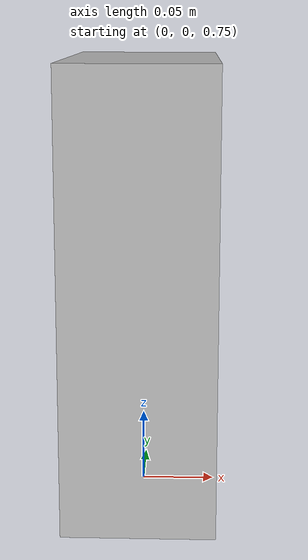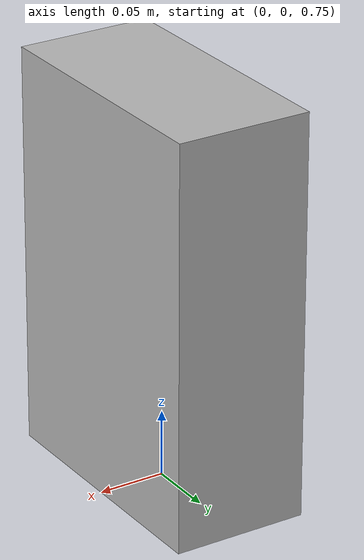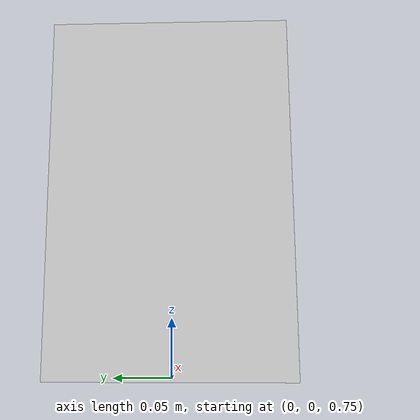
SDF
<?xml version='1.0'?>
<sdf version='1.6'>
		<model name="BodyRefBox">
			<self_collide>true</self_collide>
			<pose>0.0 0.0 0.0 0.0 0.0 0.0</pose>
			<!-- Start of parts of the pmodel BodyRefBox -->
			<!-- End of parts of the pmodel BodyRefBox -->

			<!-- Start of links of the pmodel BodyRefBox -->
			<!-- link full name is BodyRefBox::Tip -->
			<link name="1-Tip">
					<pose>0.0 0.0 0.0 0.0 0.0 0.0</pose>
					<inertial>
						<pose>0.0 0.0 0.0 0.0 0.0 0.0</pose>
						<inertia>
							<ixx>1.0</ixx>
							<ixy>0.0</ixy>
							<ixz>0.0</ixz>
							<iyy>1.0</iyy>
							<iyz>0.0</iyz>
							<izz>1.0</izz>
						</inertia>
						<mass>1.0</mass>
					</inertial>
					<!-- body full name is BodyRefBox::Tip::my_body_ref -->
					<collision name="1--my_body_ref">
						<laser_retro>0.0</laser_retro>
						<pose>0.0 0.0 0.8999999761581421 0.0 0.0 0.0</pose>
						<geometry>
							<box>
								<size>0.10000000149011612 0.20000000298023224 0.30000001192092896</size>
							</box>
						</geometry>
						<surface>
							<bounce>
								<restitution_coefficient>0.0</restitution_coefficient>
								<threshold>100000.0</threshold>
							</bounce>
							<friction>
								<ode>
									<mu>1.0</mu>
									<mu2>1.0</mu2>
									<fdir1>0.0 0.0 0.0</fdir1>
									<slip1>0.0</slip1>
									<slip2>0.0</slip2>
								</ode>
								<torsional>
									<coefficient>1.0</coefficient>
									<surface_radius>0.0</surface_radius>
								</torsional>
							</friction>
						</surface>
					</collision>
					<visual name="1--my_body_ref">
						<laser_retro>0.0</laser_retro>
						<pose>0.0 0.0 0.8999999761581421 0.0 0.0 0.0</pose>
						<geometry>
							<box>
								<size>0.10000000149011612 0.20000000298023224 0.30000001192092896</size>
							</box>
						</geometry>
						<surface>
							<bounce>
								<restitution_coefficient>0.0</restitution_coefficient>
								<threshold>100000.0</threshold>
							</bounce>
							<friction>
								<ode>
									<mu>1.0</mu>
									<mu2>1.0</mu2>
									<fdir1>0.0 0.0 0.0</fdir1>
									<slip1>0.0</slip1>
									<slip2>0.0</slip2>
								</ode>
								<torsional>
									<coefficient>1.0</coefficient>
									<surface_radius>0.0</surface_radius>
								</torsional>
							</friction>
						</surface>
					</visual>
			</link>
			<!-- End of links of the pmodel BodyRefBox -->

			<!-- Start of joints of the pmodel BodyRefBox -->
			<!-- End of joints of the pmodel BodyRefBox -->

			<!-- Start of fixed connections of the pmodel BodyRefBox -->
			<!-- End of fixed connections of the pmodel BodyRefBox -->
		</model>
</sdf>
